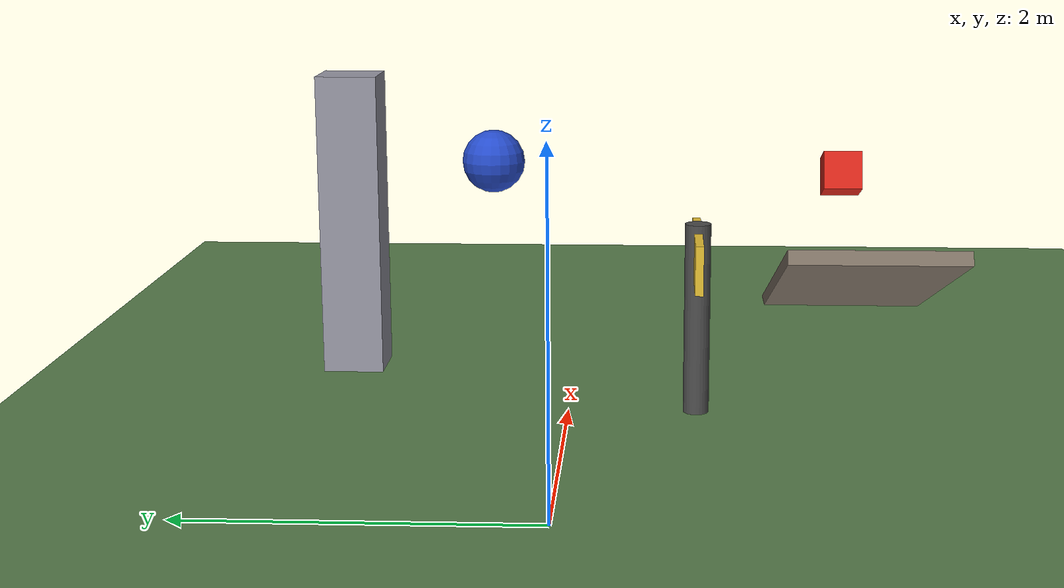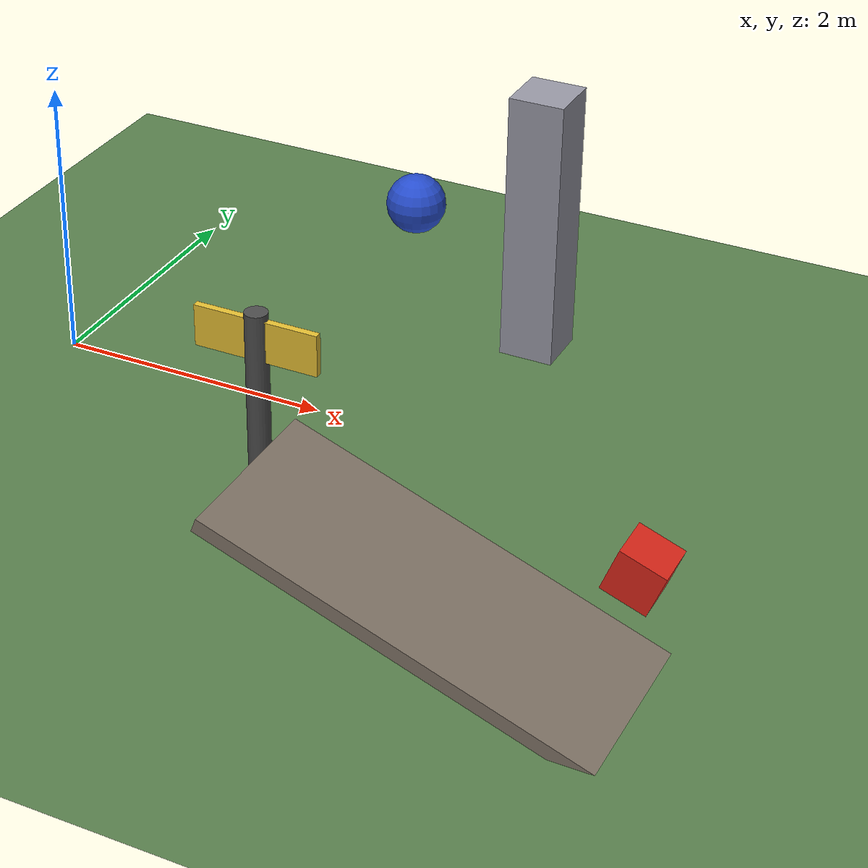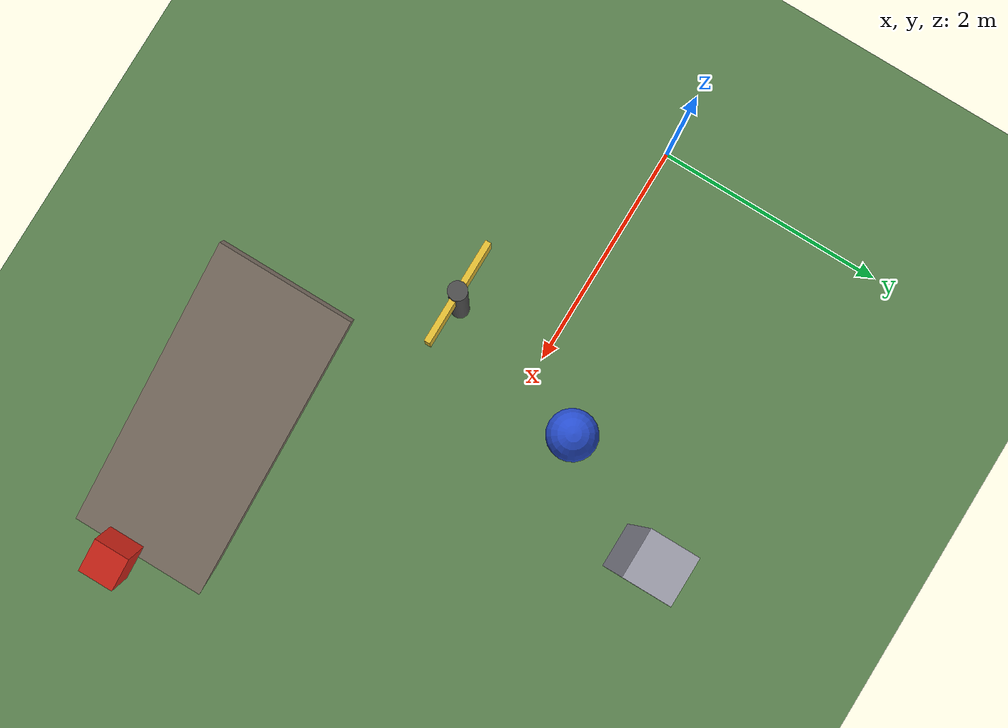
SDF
<?xml version="1.0" ?>
<sdf version="1.9">
  <world name="audit">
    <physics name="fixed" type="ode">
      <max_step_size>0.001</max_step_size>
      <real_time_factor>0</real_time_factor>
      <real_time_update_rate>0</real_time_update_rate>
    </physics>
    <plugin filename="gz-sim-physics-system" name="gz::sim::systems::Physics"/>
    <plugin filename="gz-sim-sensors-system" name="gz::sim::systems::Sensors">
      <render_engine>ogre2</render_engine>
    </plugin>
    <plugin filename="gz-sim-imu-system" name="gz::sim::systems::Imu"/>
    <plugin filename="gz-sim-scene-broadcaster-system" name="gz::sim::systems::SceneBroadcaster"/>
    <plugin filename="gz-sim-user-commands-system" name="gz::sim::systems::UserCommands"/>

    <scene>
      <ambient>0.4 0.4 0.4 1</ambient>
      <background>0.55 0.7 0.9 1</background>
      <shadows>true</shadows>
    </scene>
    <light type="directional" name="sun">
      <cast_shadows>true</cast_shadows>
      <pose>0 0 10 0 0 0</pose>
      <diffuse>0.9 0.9 0.85 1</diffuse>
      <specular>0.2 0.2 0.2 1</specular>
      <direction>-0.5 0.3 -0.9</direction>
    </light>

    <model name="ground">
      <static>true</static>
      <link name="link">
        <collision name="c"><geometry><plane><normal>0 0 1</normal><size>40 40</size></plane></geometry></collision>
        <visual name="v">
          <geometry><plane><normal>0 0 1</normal><size>40 40</size></plane></geometry>
          <material><ambient>0.35 0.5 0.3 1</ambient><diffuse>0.35 0.5 0.3 1</diffuse></material>
        </visual>
      </link>
    </model>

    <model name="pillar">
      <static>true</static>
      <pose>3 1.5 1 0 0 0</pose>
      <link name="link">
        <collision name="c"><geometry><box><size>0.4 0.4 2</size></box></geometry></collision>
        <visual name="v">
          <geometry><box><size>0.4 0.4 2</size></box></geometry>
          <material><ambient>0.6 0.6 0.65 1</ambient><diffuse>0.6 0.6 0.65 1</diffuse></material>
        </visual>
      </link>
    </model>

    <model name="ramp">
      <static>true</static>
      <pose>4 -2 0.35 0 0.35 0</pose>
      <link name="link">
        <collision name="c"><geometry><box><size>3 1.2 0.1</size></box></geometry></collision>
        <visual name="v">
          <geometry><box><size>3 1.2 0.1</size></box></geometry>
          <material><ambient>0.5 0.45 0.4 1</ambient><diffuse>0.5 0.45 0.4 1</diffuse></material>
        </visual>
      </link>
    </model>

    <!-- The mover: a box released on the ramp; it slides, tips and comes to rest.
         The IMU rides on it, with seeded Gaussian noise. -->
    <model name="mover">
      <pose>5.1 -2 1.0 0 0.35 0</pose>
      <link name="link">
        <inertial><mass>1.5</mass><inertia><ixx>0.02</ixx><iyy>0.02</iyy><izz>0.02</izz></inertia></inertial>
        <collision name="c">
          <geometry><box><size>0.3 0.3 0.3</size></box></geometry>
          <surface><friction><ode><mu>0.25</mu><mu2>0.25</mu2></ode></friction></surface>
        </collision>
        <visual name="v">
          <geometry><box><size>0.3 0.3 0.3</size></box></geometry>
          <material><ambient>0.85 0.15 0.1 1</ambient><diffuse>0.85 0.15 0.1 1</diffuse></material>
        </visual>
        <sensor name="imu" type="imu">
          <always_on>true</always_on>
          <update_rate>240</update_rate>
          <topic>imu</topic>
          <imu>
            <angular_velocity>
              <x><noise type="gaussian"><mean>0</mean><stddev>0.002</stddev></noise></x>
              <y><noise type="gaussian"><mean>0</mean><stddev>0.002</stddev></noise></y>
              <z><noise type="gaussian"><mean>0</mean><stddev>0.002</stddev></noise></z>
            </angular_velocity>
            <linear_acceleration>
              <x><noise type="gaussian"><mean>0</mean><stddev>0.02</stddev></noise></x>
              <y><noise type="gaussian"><mean>0</mean><stddev>0.02</stddev></noise></y>
              <z><noise type="gaussian"><mean>0</mean><stddev>0.02</stddev></noise></z>
            </linear_acceleration>
          </imu>
        </sensor>
      </link>
    </model>

    <!-- A sphere dropped onto the plane: a second contact event, rolling after. -->
    <model name="ball">
      <pose>2.5 0.5 1.5 0 0 0</pose>
      <link name="link">
        <inertial><mass>0.8</mass><inertia><ixx>0.008</ixx><iyy>0.008</iyy><izz>0.008</izz></inertia></inertial>
        <collision name="c"><geometry><sphere><radius>0.2</radius></sphere></geometry></collision>
        <visual name="v">
          <geometry><sphere><radius>0.2</radius></sphere></geometry>
          <material><ambient>0.15 0.3 0.8 1</ambient><diffuse>0.15 0.3 0.8 1</diffuse></material>
        </visual>
      </link>
    </model>

    <!-- The spinner: a panel on a revolute joint driven at a constant rate, so the
         rendered rows see scripted motion that owes nothing to contacts. -->
    <model name="spinner">
      <pose>2 -0.8 0.6 0 0 0</pose>
      <link name="base">
        <inertial><mass>5</mass><inertia><ixx>0.1</ixx><iyy>0.1</iyy><izz>0.1</izz></inertia></inertial>
        <collision name="c"><geometry><cylinder><radius>0.08</radius><length>1.2</length></cylinder></geometry></collision>
        <visual name="v"><geometry><cylinder><radius>0.08</radius><length>1.2</length></cylinder></geometry>
          <material><ambient>0.3 0.3 0.3 1</ambient><diffuse>0.3 0.3 0.3 1</diffuse></material></visual>
      </link>
      <joint name="fix" type="fixed"><parent>world</parent><child>base</child></joint>
      <link name="panel">
        <pose>0 0 0.4 0 0 0</pose>
        <inertial><mass>0.5</mass><inertia><ixx>0.01</ixx><iyy>0.01</iyy><izz>0.01</izz></inertia></inertial>
        <visual name="v"><geometry><box><size>0.9 0.05 0.3</size></box></geometry>
          <material><ambient>0.9 0.75 0.2 1</ambient><diffuse>0.9 0.75 0.2 1</diffuse></material></visual>
      </link>
      <joint name="spin" type="revolute">
        <parent>base</parent><child>panel</child>
        <axis><xyz>0 0 1</xyz><limit><lower>-1e16</lower><upper>1e16</upper></limit></axis>
      </joint>
      <plugin filename="gz-sim-joint-controller-system" name="gz::sim::systems::JointController">
        <joint_name>spin</joint_name>
        <initial_velocity>2.0</initial_velocity>
      </plugin>
    </model>

    <!-- The sensor rig: static, looking at the scene. -->
    <model name="rig">
      <static>true</static>
      <pose>0 0 1.2 0 0.15 0</pose>
      <link name="link">
        <sensor name="camera" type="camera">
          <always_on>true</always_on>
          <update_rate>30</update_rate>
          <topic>camera</topic>
          <camera>
            <horizontal_fov>1.2</horizontal_fov>
            <image><width>640</width><height>480</height></image>
            <clip><near>0.1</near><far>50</far></clip>
          </camera>
        </sensor>
        <sensor name="depth_camera" type="depth_camera">
          <always_on>true</always_on>
          <update_rate>30</update_rate>
          <topic>depth_camera</topic>
          <camera>
            <horizontal_fov>1.2</horizontal_fov>
            <image><width>640</width><height>480</height></image>
            <clip><near>0.1</near><far>50</far></clip>
          </camera>
        </sensor>
        <sensor name="lidar" type="gpu_lidar">
          <always_on>true</always_on>
          <update_rate>10</update_rate>
          <topic>lidar</topic>
          <lidar>
            <scan>
              <horizontal><samples>720</samples><resolution>1</resolution><min_angle>-3.14159</min_angle><max_angle>3.14159</max_angle></horizontal>
              <vertical><samples>16</samples><resolution>1</resolution><min_angle>-0.26</min_angle><max_angle>0.26</max_angle></vertical>
            </scan>
            <range><min>0.1</min><max>30</max><resolution>0.01</resolution></range>
          </lidar>
        </sensor>
      </link>
    </model>
  </world>
</sdf>
